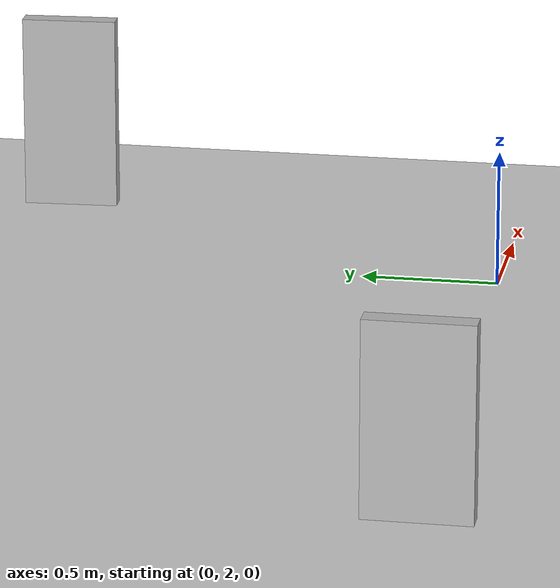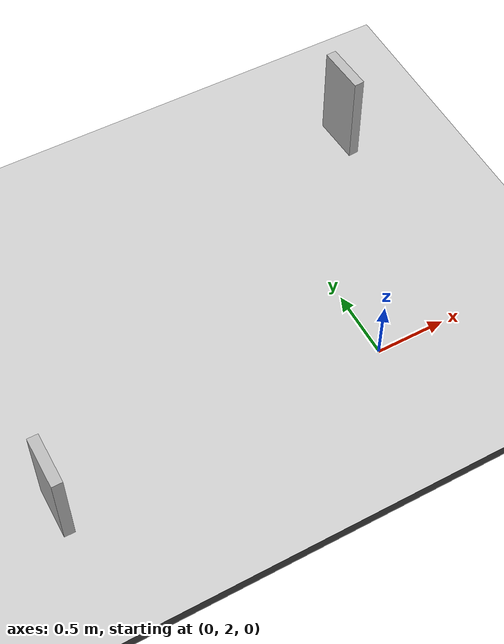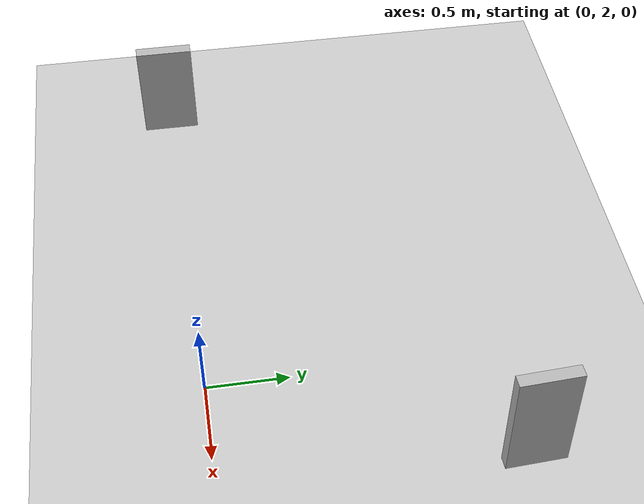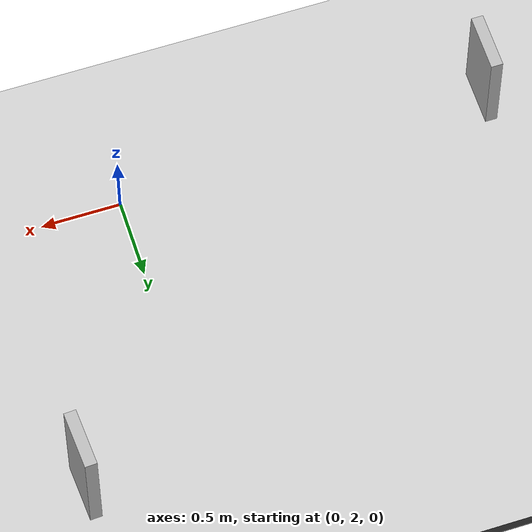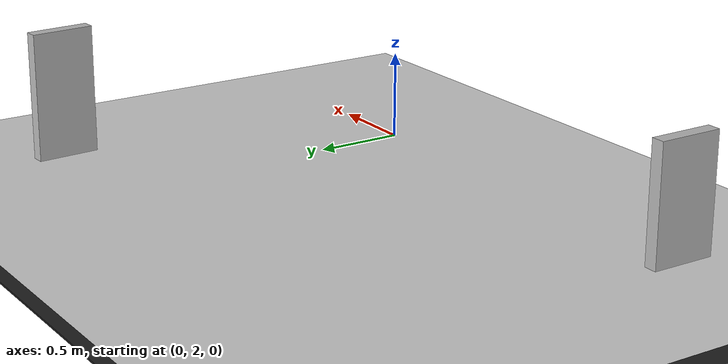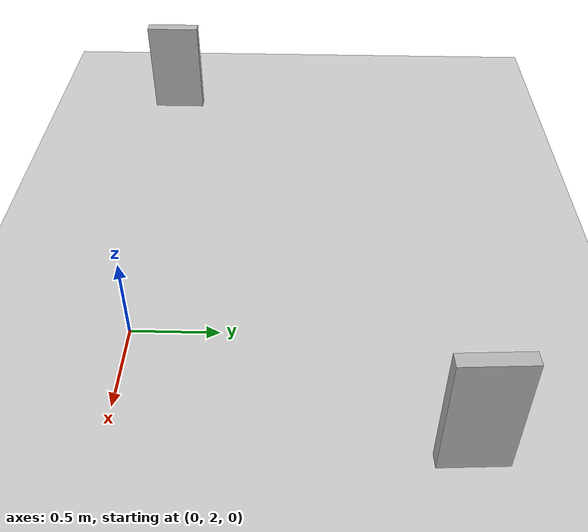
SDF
<sdf version="1.7">
 <world name="default">
  <scene>
   <ambient>0 0 0 1</ambient>
   <shadows>0</shadows>
   <grid>0</grid>
   <background>0.7 0.7 0.7 1</background>
  </scene>
  <light name="sun" type="directional">
   <pose>0 0 10 0 -0 0</pose>
   <diffuse>0.8 0.8 0.8 1</diffuse>
   <specular>0.1 0.1 0.1 1</specular>
   <attenuation>
    <range>1000</range>
    <constant>0.9</constant>
    <linear>0.01</linear>
    <quadratic>0.001</quadratic>
   </attenuation>
   <direction>-0.5 0.5 -1</direction>
   <spot><inner_angle>0</inner_angle><outer_angle>0</outer_angle><falloff>0</falloff></spot>
  </light>
  <model name="ground2">
   <pose>0 0 -0.1 0 -0 0</pose>
   <static>1</static>
   <link name="ground">
    <collision name="ground_coll"><geometry><box><size>8 8 0.01</size></box></geometry></collision>
    <visual name="ground_vis">
     <geometry><box><size>10 10 0.01</size></box></geometry>
     <material>
      <script><uri>file://media/materials/scripts/gazebo.material</uri><name>Gazebo/FlatBlack</name></script>
     </material>
    </visual>
   </link>
  </model>
  <gravity>0 0 -9.8</gravity>
  <magnetic_field>6e-06 2.3e-05 -4.2e-05</magnetic_field>
  <atmosphere type="adiabatic"/>
  <physics name="default_physics" default="0" type="ode">
   <max_step_size>0.001</max_step_size>
   <real_time_factor>1</real_time_factor>
   <real_time_update_rate>1000</real_time_update_rate>
  </physics>
  <spherical_coordinates>
   <surface_model>EARTH_WGS84</surface_model>
   <latitude_deg>0</latitude_deg>
   <longitude_deg>0</longitude_deg>
   <elevation>0</elevation>
   <heading_deg>0</heading_deg>
  </spherical_coordinates>
  <light name="user_point_light_1" type="point">
   <pose>-1.64815 0.604519 1 0 -0 0</pose>
   <diffuse>0.5 0.5 0.5 1</diffuse>
   <specular>0.1 0.1 0.1 1</specular>
   <attenuation>
    <range>20</range>
    <constant>0.5</constant>
    <linear>0.01</linear>
    <quadratic>0.001</quadratic>
   </attenuation>
   <cast_shadows>0</cast_shadows>
   <direction>0 0 -1</direction>
   <spot><inner_angle>0</inner_angle><outer_angle>0</outer_angle><falloff>0</falloff></spot>
  </light>
  <light name="user_point_light_2" type="point">
   <pose>1.63854 1.69565 1 0 -0 0</pose>
   <diffuse>0.5 0.5 0.5 1</diffuse>
   <specular>0.1 0.1 0.1 1</specular>
   <attenuation>
    <range>20</range>
    <constant>0.5</constant>
    <linear>0.01</linear>
    <quadratic>0.001</quadratic>
   </attenuation>
   <cast_shadows>0</cast_shadows>
   <direction>0 0 -1</direction>
   <spot><inner_angle>0</inner_angle><outer_angle>0</outer_angle><falloff>0</falloff></spot>
  </light>
  <light name="user_point_light_3" type="point">
   <pose>0.42 -3.31 1 0 -0 0</pose>
   <diffuse>0.5 0.5 0.5 1</diffuse>
   <specular>0.1 0.1 0.1 1</specular>
   <attenuation>
    <range>20</range>
    <constant>0.5</constant>
    <linear>0.01</linear>
    <quadratic>0.001</quadratic>
   </attenuation>
   <cast_shadows>0</cast_shadows>
   <direction>0 0 -1</direction>
   <spot><inner_angle>0</inner_angle><outer_angle>0</outer_angle><falloff>0</falloff></spot>
  </light>
  <model name="traffic_stop">
   <static>1</static>
   <link name="box">
    <collision name="collision"><geometry><box><size>0.36 0.075 0.75</size></box></geometry></collision>
    <visual name="visual">
     <geometry><box><size>0.36 0.075 0.75</size></box></geometry>
     <material>
      <script>
       <uri>model://turtlebot3_autorace_2020/traffic_stop/materials/scripts</uri>
       <uri>model://turtlebot3_autorace_2020/traffic_stop/materials/textures</uri>
       <name>traffic_stop</name>
      </script>
     </material>
    </visual>
   </link>
   <pose>0.748974 3.76745 0.359048 0 0 -1.51613</pose>
  </model>
  <model name="traffic_left">
   <static>1</static>
   <link name="box">
    <pose>1.08 -0.838 0.125 0 -0 -1.57</pose>
    <collision name="collision"><geometry><box><size>0.36 0.075 0.75</size></box></geometry></collision>
    <visual name="visual">
     <geometry><box><size>0.36 0.075 0.75</size></box></geometry>
     <material>
      <script>
       <uri>model://turtlebot3_autorace_2020/traffic_left/materials/scripts</uri>
       <uri>model://turtlebot3_autorace_2020/traffic_left/materials/textures</uri>
       <name>traffic_left</name>
      </script>
     </material>
    </visual>
   </link>
   <pose>-3.43332 2.79353 0.14936 0 -0 0</pose>
  </model>
  <model name="course">
   <static>1</static>
   <link name="course_link">
    <collision name="course_collision">
     <geometry><plane><normal>0 0 1</normal><size>10 10</size></plane></geometry>
     <surface><friction><ode><mu>100</mu><mu2>50</mu2></ode></friction></surface>
    </collision>
    <visual name="course_visual">
     <cast_shadows>0</cast_shadows>
     <geometry><plane><normal>0 0 1</normal><size>10 10</size></plane></geometry>
     <material>
      <script>
       <uri>model://turtlebot3_autorace_2020/course/materials/scripts</uri>
       <uri>model://turtlebot3_autorace_2020/course/materials/textures</uri>
       <name>course</name>
      </script>
     </material>
    </visual>
   </link>
   <pose>0.178788 0.024494 0 0 -0 0</pose>
  </model>
 </world>
</sdf>
